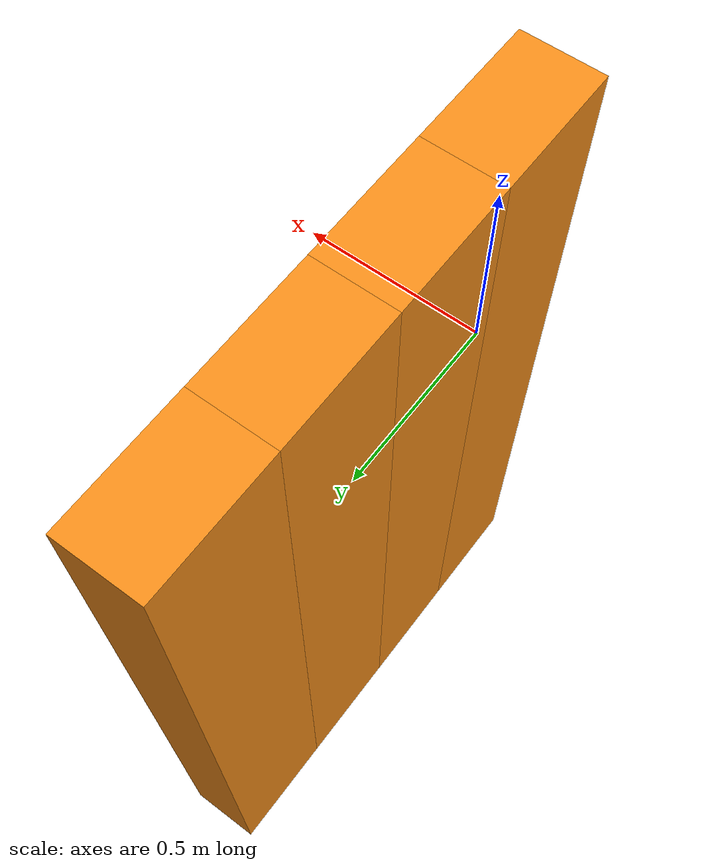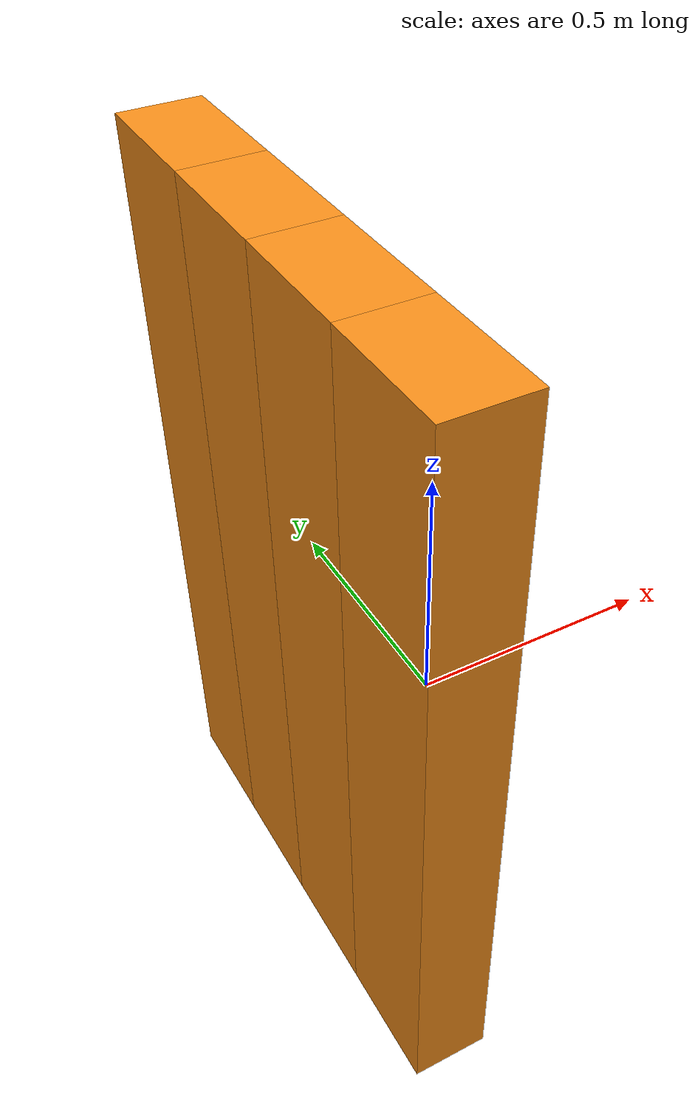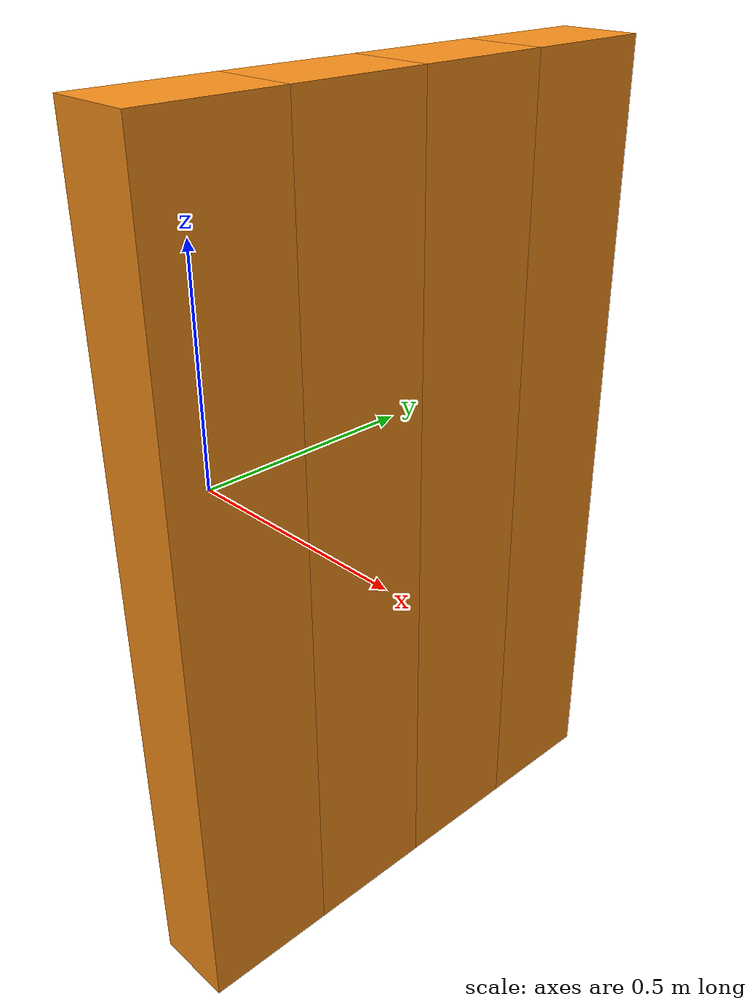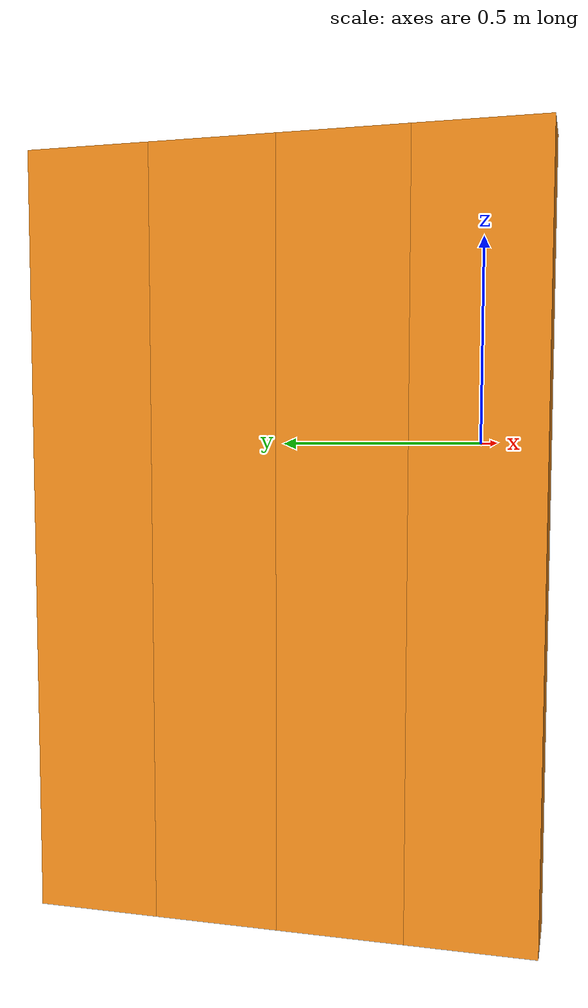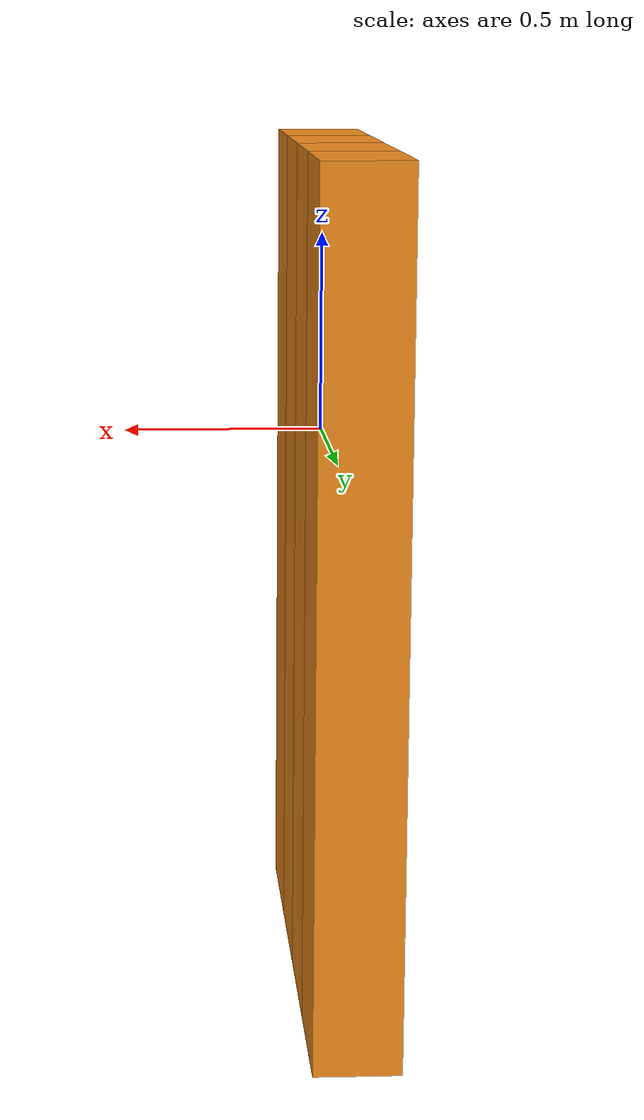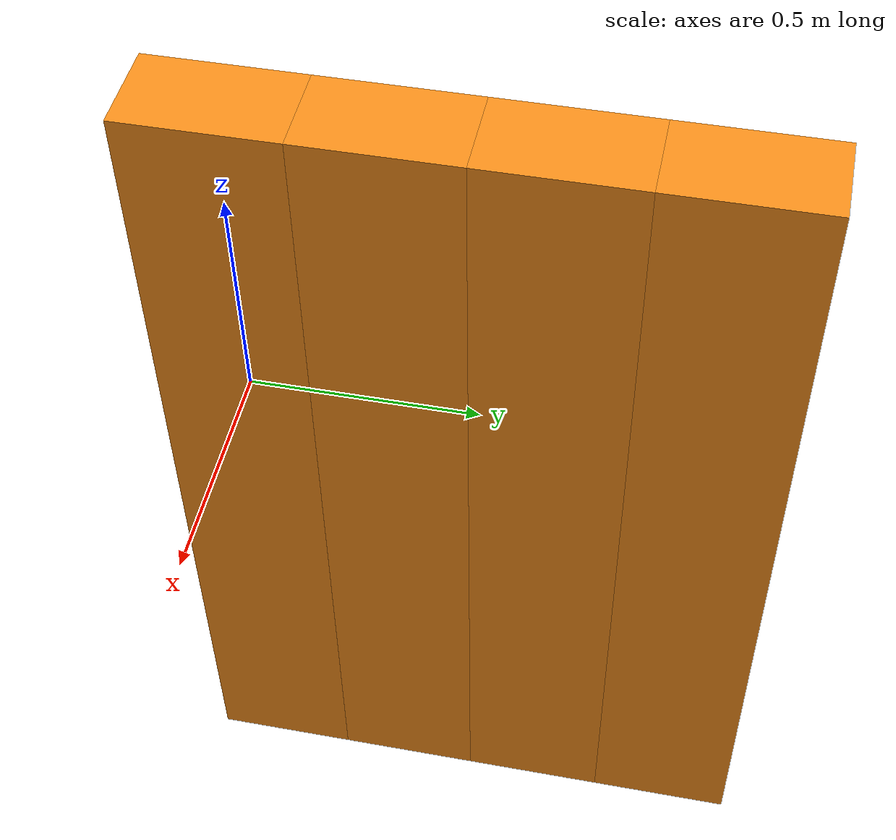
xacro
<?xml version="1.0"?>
<!-- Revolute-Revolute Manipulator -->
<robot name="$(arg name)" xmlns:xacro="http://www.ros.org/wiki/xacro">

  <!-- Constants for robot dimensions -->
  <xacro:property name="PI" value="3.1415926535897931"/>
  <xacro:property name="width" value="0.33" /> <!-- Square dimensions (widthxwidth) of beams -->
  <xacro:property name="depth" value="0.2" /> <!-- Square dimensions (widthxwidth) of beams -->

  <xacro:property name="height1" value="2" /> <!-- Link 1 -->
  <xacro:property name="height2" value="2" /> <!-- Link 2 -->
  <xacro:property name="height3" value="2" /> <!-- Link 3 -->
  <xacro:property name="height4" value="2" /> <!-- Link 4 -->

  <xacro:property name="motor_offset" value="-0.25" /> <!-- Link 4 -->

  <xacro:property name="segmentmass" value="30" /> <!-- Link Mass -->

  <xacro:property name="camera_link" value="0.05" /> <!-- Size of square 'camera' box -->
  <xacro:property name="axel_offset" value="0.05" /> <!-- Space btw top of beam and the each joint -->

  <!-- Import all Gazebo-customization elements, including Gazebo colors -->
  <xacro:include filename="$(find tars_description)/urdf/tars.gazebo" />
  <!-- Import Rviz colors -->
  <xacro:include filename="$(find tars_description)/urdf/materials.xacro" />

  <xacro:macro name="leg" params="name offset height">
    <link name="${name}">
      <collision>
        <origin xyz="0 0 ${offset + motor_offset}" rpy="0 0 0"/>
        <geometry>
    <box size="${depth} ${width} ${height}"/>
        </geometry>
      </collision>

      <visual>
        <origin xyz="0 0 ${offset + motor_offset}" rpy="0 0 0"/>
        <geometry>
    <box size="${depth} ${width} ${height}"/>
        </geometry>
        <material name="orange"/>
      </visual>

      <inertial>
        <origin xyz="0 0 ${offset}" rpy="0 0 0"/>
        <mass value="${segmentmass}"/>
        <inertia
      ixx="1.0" ixy="0.0" ixz="0.0"
      iyy="1.0" iyz="0.0"
      izz="1.0"/>
      </inertial>
    </link>
  </xacro:macro>

  <xacro:leg name="link1" offset="0" height="${height1}" />
  <xacro:leg name="link2" offset="0" height="${height2}" />
  <xacro:leg name="link3" offset="0" height="${height3}" />
  <xacro:leg name="link4" offset="0" height="${height4}" />

  <joint name="joint1" type="continuous">
    <parent link="link1"/>
    <child link="link2"/>
    <origin xyz="0 ${width} 0" rpy="0 0 0"/>
    <axis xyz="0 1 0"/>
    <dynamics damping="0.7"/>
    <limit velocity="1" effort="1000.0"/>
  </joint>

  <joint name="joint2" type="continuous">
    <parent link="link2"/>
    <child link="link3"/>
    <origin xyz="0 ${width} 0" rpy="0 0 0"/>
    <axis xyz="0 1 0"/>
    <dynamics damping="0.7"/>
    <limit velocity="1" effort="1000.0"/>
  </joint>

  <joint name="joint3" type="continuous">
    <parent link="link3"/>
    <child link="link4"/>
    <origin xyz="0 ${width} 0" rpy="0 0 0"/>
    <axis xyz="0 1 0"/>
    <dynamics damping="0.7"/>
    <limit velocity="1" effort="1000.0"/>
  </joint>

  <transmission name="tran1">
    <type>transmission_interface/SimpleTransmission</type>
    <joint name="joint1">
      <hardwareInterface>EffortJointInterface</hardwareInterface>
    </joint>
    <actuator name="motor1">
      <hardwareInterface>EffortJointInterface</hardwareInterface>
      <mechanicalReduction>1</mechanicalReduction>
    </actuator>
  </transmission>

  <transmission name="tran2">
    <type>transmission_interface/SimpleTransmission</type>
    <joint name="joint2">
      <hardwareInterface>EffortJointInterface</hardwareInterface>
    </joint>
    <actuator name="motor2">
      <hardwareInterface>EffortJointInterface</hardwareInterface>
      <mechanicalReduction>1</mechanicalReduction>
    </actuator>
  </transmission>

  <transmission name="tran3">
    <type>transmission_interface/SimpleTransmission</type>
    <joint name="joint3">
      <hardwareInterface>EffortJointInterface</hardwareInterface>
    </joint>
    <actuator name="motor3">
      <hardwareInterface>EffortJointInterface</hardwareInterface>
      <mechanicalReduction>1</mechanicalReduction>
    </actuator>
  </transmission>

</robot>
